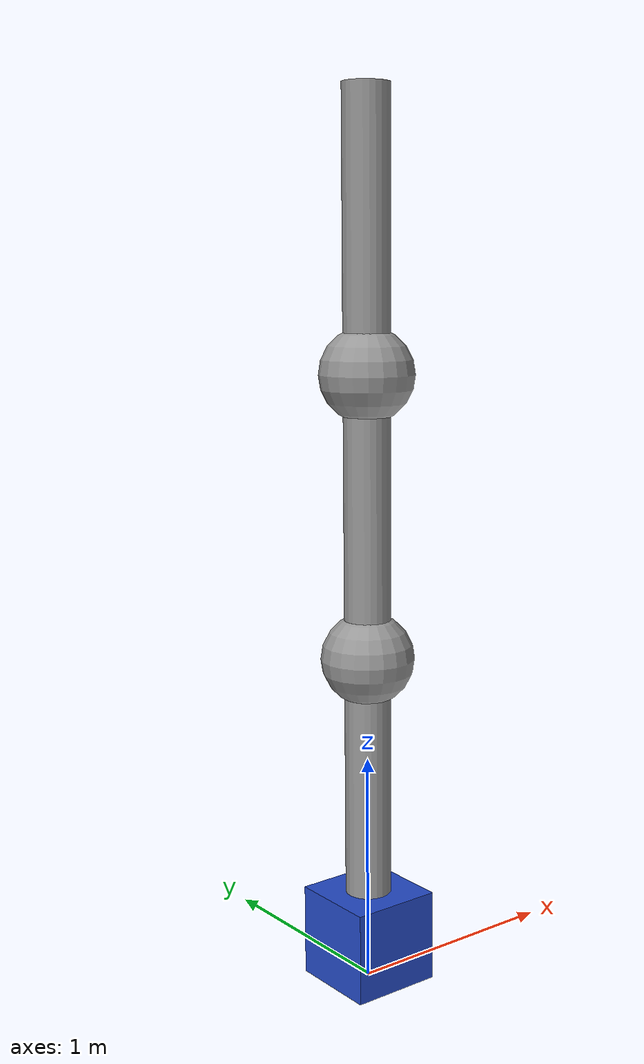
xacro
<?xml version="1.0"?>
<robot xmlns:xacro="http://www.ros.org/wiki/xacro" name="robot">
    <xacro:include filename="robot_macro.xacro" />
    <xacro:include filename="common_properties.xacro" />

    <xacro:property name="box_base_length" value="0.4"/>
    <xacro:property name="cylinder_link_length" value="1.0"/>
    <xacro:property name="cylinder_link_radius" value="0.1"/>
    <xacro:property name="sphere_link_radius" value="0.2"/>

    <xacro:property name="gripper_filename" value="gripper_base.dae"/>
    <xacro:property name="gripper_orientation" value="-1.57"/>
    <xacro:property name="gripper_scale" value="$3"/>

    <xacro:property name="offset_cylinder" value="0.5"/>
    <xacro:property name="offset_sphere" value="0.05"/>
    <link name="world"/>
    <!-- Base Link -->
    <xacro:box_link name="base" pos_z="${- box_base_length / 2}" />

    <!-- Link1 -->
    <xacro:cylinder_link name="link1" pos_z="${box_base_length}" />

    <!-- Sphere1-->
    <xacro:sphere_link name="sphere1" pos_z="0.0" />

    <!-- Link2-->
    <xacro:cylinder_link name="link2" pos_z="${offset_cylinder}" />

    <!-- Sphere2-->
    <xacro:sphere_link name="sphere2" pos_z="0.0" />

    <!-- Link3-->
    <xacro:cylinder_link name="link3" pos_z="${offset_cylinder}" />

    <!-- | KINEMATIC PROPERTIES - JOINTS | -->

    <!-- World_Base_Joint -->
    <xacro:fixed_joint name="base_to_world" parent="world" child="base" pos_z="${box_base_length}"/>

    <!-- Base_Link1_Joint REVOLUTE-->
    <xacro:revolute_joint name="base_link1_joint" parent="base" child="link1" axis="z" pos_z="0.0"/>

    <!-- Link1_sphere1_Joint REVOLUTE-->
    <xacro:revolute_joint name="link1_sphere1_joint" parent="link1" child="sphere1" axis="y" pos_z="${cylinder_link_length + offset_sphere}"/>

    <!-- Sphere1_Link2_Joint FIXED-->
    <xacro:fixed_joint name="sphere1_link2_joint" parent="sphere1" child="link2" pos_z="${sphere_link_radius - offset_sphere}"/>

    <!-- Link2_sphere2_Joint REVOLUTE-->
    <xacro:revolute_joint name="link2_sphere2_joint" parent="link2" child="sphere2" axis="y" pos_z="${cylinder_link_length + offset_sphere}"/>

    <!-- Sphere2_Link3_Joint FIXED-->
    <xacro:fixed_joint name="sphere2_link3_joint" parent="sphere2" child="link3" pos_z="${sphere_link_radius - offset_sphere}"/>

</robot>

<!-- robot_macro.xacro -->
<robot xmlns:xacro="http://www.ros.org/wiki/xacro">

    <!--     LINK MACROS    -->

    <xacro:macro name="box_link" params="name pos_z">
        <link name="${name}">
            <visual>
                <origin xyz="0.0 0.0 ${pos_z}" rpy="0.0 0.0 0.0"/>
                <geometry>
                <box size="${box_base_length} ${box_base_length} ${box_base_length}"/>
                </geometry>
                <material name="blue"/>
            </visual>
        </link>
    </xacro:macro>

    <xacro:macro name="cylinder_link" params="name pos_z">
        <link name="${name}">
            <visual>
                <origin xyz="0.0 0.0 ${pos_z}" rpy="0.0 0.0 0.0"/>
                <geometry>
                <cylinder radius="${cylinder_link_radius}" length="${cylinder_link_length}"/>
                </geometry>
                <material name="grey"/>
            </visual>
        </link>
    </xacro:macro>

    <xacro:macro name="sphere_link" params="name pos_z">
        <link name="${name}">
            <visual>
                <origin xyz="0.0 0.0 ${pos_z}" rpy="0.0 0.0 0.0"/>
                <geometry>
                <sphere radius="${sphere_link_radius}"/>
                </geometry>
                <material name="grey"/>
            </visual>
        </link>
    </xacro:macro>

    <!--     JOINT MACROS   -->

<xacro:macro name="fixed_joint" params="name parent child pos_z">
    <joint name="${name}" type="fixed">
        <parent link="${parent}"/>
        <child link="${child}"/>
        <origin rpy="0 0 0" xyz="0 0 ${pos_z}"/>
        </joint>
    </xacro:macro>

    <xacro:macro name="revolute_joint" params="name parent child axis pos_z">
    <joint name="${name}" type="revolute">
        <parent link="${parent}"/>
        <child link="${child}"/>

        <xacro:if value="${axis== 'x'}">
            <axis xyz="1 0 0"/>
        </xacro:if>
        <xacro:if value="${axis == 'y'}">
            <axis xyz="0 1 0"/>
        </xacro:if>
        <xacro:if value="${axis == 'z'}">
            <axis xyz="0 0 1"/>
        </xacro:if>

        <origin rpy="0 0 0" xyz="0 0 ${pos_z}"/>
        <limit effort="87" lower="-2.8973" upper="2.8973" velocity="2.1750"/>
    </joint>
    </xacro:macro>
</robot>
